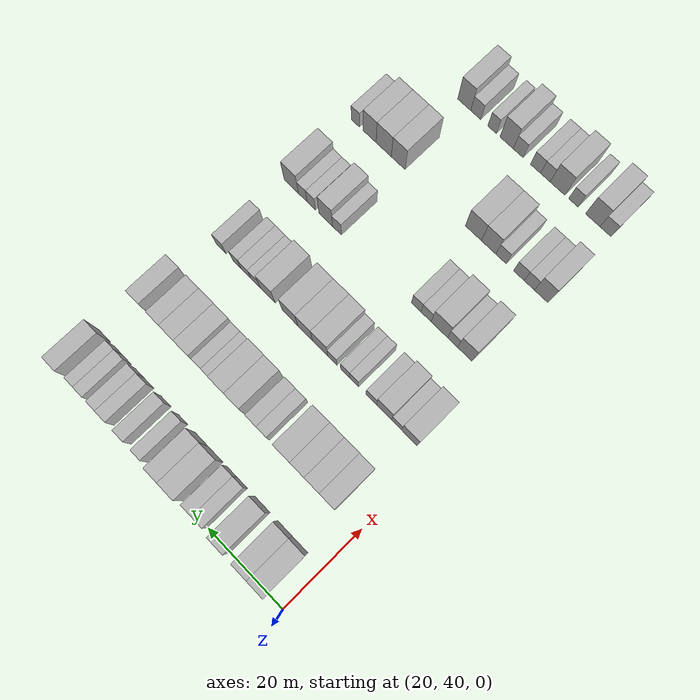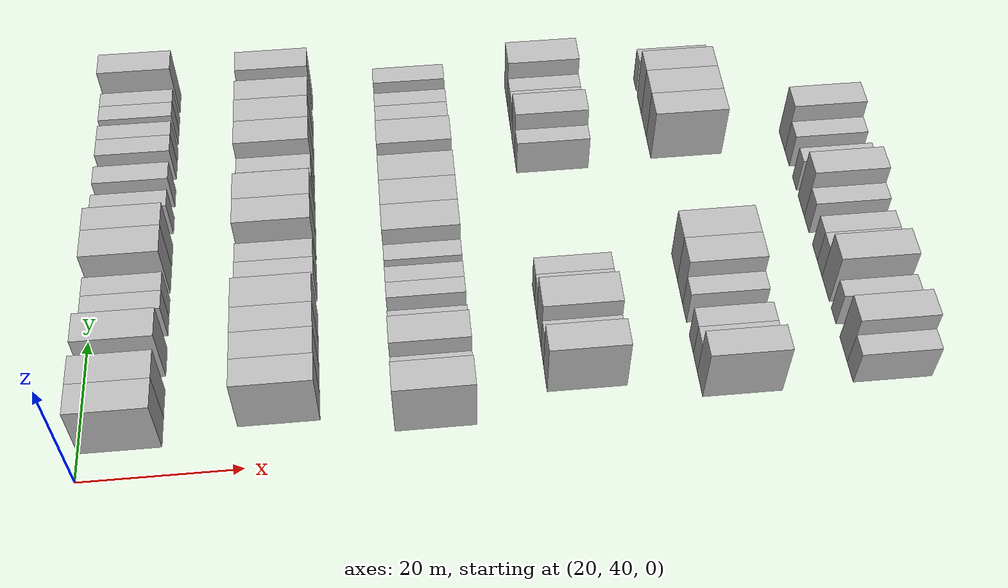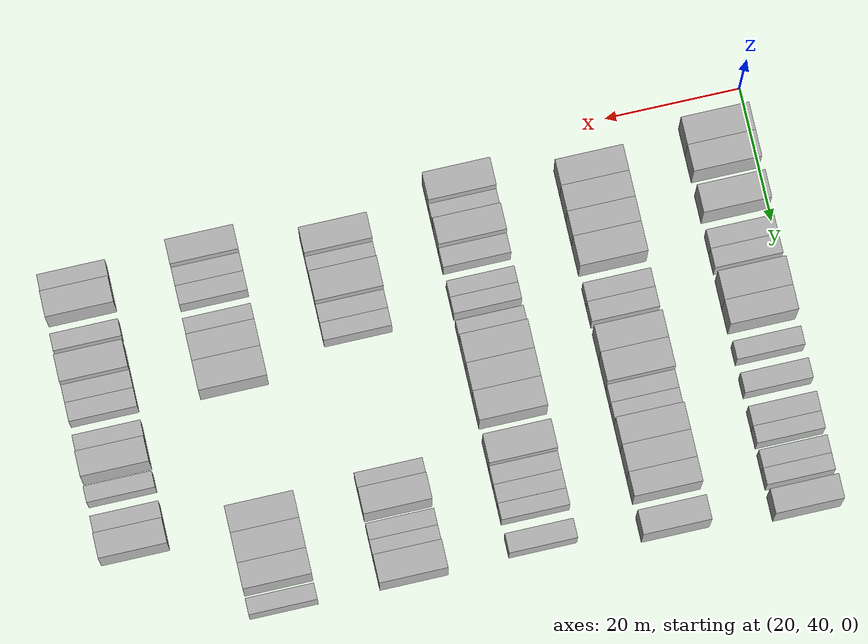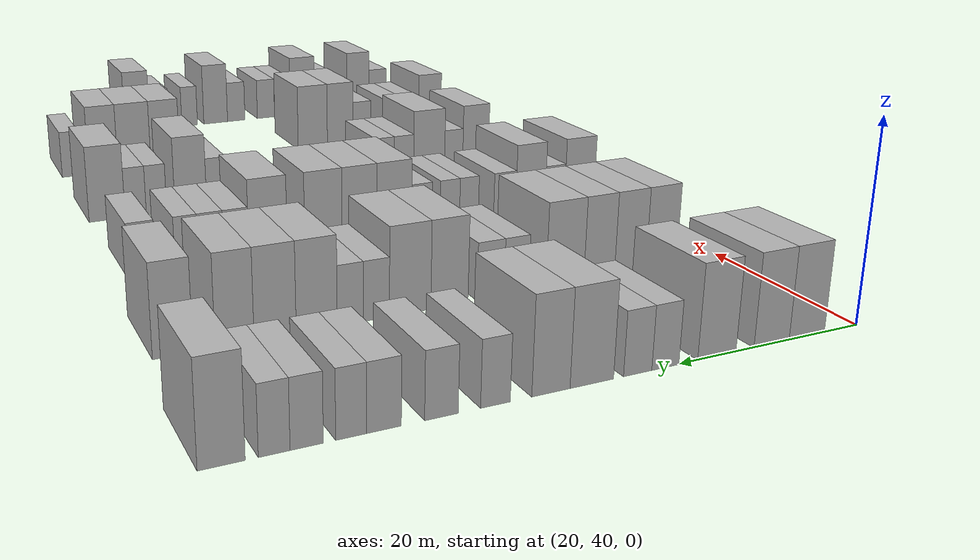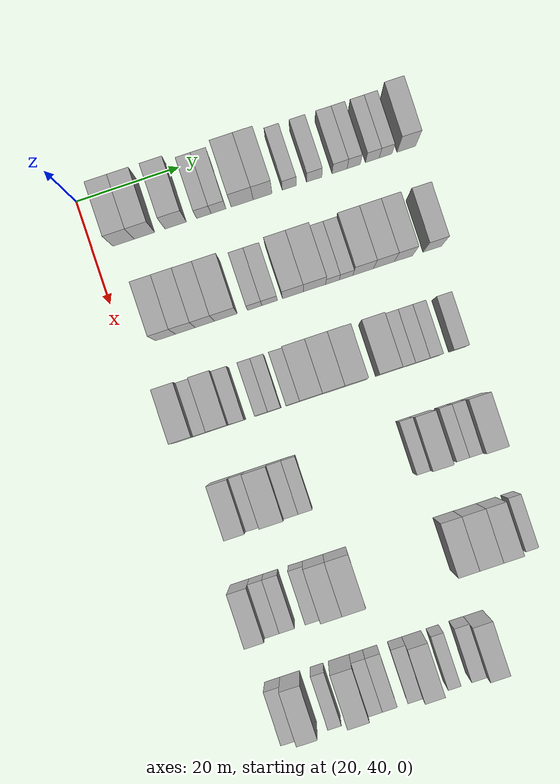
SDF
<sdf version="1.6">
 <world name="default">
  <model name="building_104">
   <static>1</static>
   <pose>25.0000 45.9357 0 0.000000 0.000000 0.000000</pose>
   <link name="link">
    <pose>0 0 4.50 0 0 0</pose>
    <collision name="collision"><geometry><box><size>10.0000 4.1173 9.0000</size></box></geometry></collision>
    <visual name="visual">
     <cast_shadows>0</cast_shadows>
     <geometry><box><size>10.0000 4.1173 9.0000</size></box></geometry>
     <material>
      <script>
       <uri>model://HANNAS_wall/materials/scripts</uri>
       <uri>model://HANNAS_wall/materials/textures</uri>
       <name>vrc/HANNAS_wall</name>
      </script>
     </material>
    </visual>
   </link>
  </model>
  <model name="building_105">
   <static>1</static>
   <pose>25.0000 49.9851 0 0.000000 0.000000 0.000000</pose>
   <link name="link">
    <pose>0 0 4.50 0 0 0</pose>
    <collision name="collision"><geometry><box><size>10.0000 3.9816 9.0000</size></box></geometry></collision>
    <visual name="visual">
     <cast_shadows>0</cast_shadows>
     <geometry><box><size>10.0000 3.9816 9.0000</size></box></geometry>
     <material>
      <script>
       <uri>model://HANNAS_wall/materials/scripts</uri>
       <uri>model://HANNAS_wall/materials/textures</uri>
       <name>vrc/HANNAS_wall</name>
      </script>
     </material>
    </visual>
   </link>
  </model>
  <model name="building_106">
   <static>1</static>
   <pose>25.0000 56.0483 0 0.000000 0.000000 0.000000</pose>
   <link name="link">
    <pose>0 0 4.50 0 0 0</pose>
    <collision name="collision"><geometry><box><size>10.0000 4.1447 9.0000</size></box></geometry></collision>
    <visual name="visual">
     <cast_shadows>0</cast_shadows>
     <geometry><box><size>10.0000 4.1447 9.0000</size></box></geometry>
     <material>
      <script>
       <uri>model://HANNAS_wall/materials/scripts</uri>
       <uri>model://HANNAS_wall/materials/textures</uri>
       <name>vrc/HANNAS_wall</name>
      </script>
     </material>
    </visual>
   </link>
  </model>
  <model name="building_107">
   <static>1</static>
   <pose>25.0000 61.5281 0 0.000000 0.000000 0.000000</pose>
   <link name="link">
    <pose>0 0 3.00 0 0 0</pose>
    <collision name="collision"><geometry><box><size>10.0000 2.8149 6.0000</size></box></geometry></collision>
    <visual name="visual">
     <cast_shadows>0</cast_shadows>
     <geometry><box><size>10.0000 2.8149 6.0000</size></box></geometry>
     <material>
      <script>
       <uri>model://HANNAS_wall/materials/scripts</uri>
       <uri>model://HANNAS_wall/materials/textures</uri>
       <name>vrc/HANNAS_wall</name>
      </script>
     </material>
    </visual>
   </link>
  </model>
  <model name="building_108">
   <static>1</static>
   <pose>25.0000 64.3723 0 0.000000 0.000000 0.000000</pose>
   <link name="link">
    <pose>0 0 3.00 0 0 0</pose>
    <collision name="collision"><geometry><box><size>10.0000 2.8735 6.0000</size></box></geometry></collision>
    <visual name="visual">
     <cast_shadows>0</cast_shadows>
     <geometry><box><size>10.0000 2.8735 6.0000</size></box></geometry>
     <material>
      <script>
       <uri>model://HANNAS_wall/materials/scripts</uri>
       <uri>model://HANNAS_wall/materials/textures</uri>
       <name>vrc/HANNAS_wall</name>
      </script>
     </material>
    </visual>
   </link>
  </model>
  <model name="building_109">
   <static>1</static>
   <pose>25.0000 68.9451 0 0.000000 0.000000 0.000000</pose>
   <link name="link">
    <pose>0 0 4.50 0 0 0</pose>
    <collision name="collision"><geometry><box><size>10.0000 4.2720 9.0000</size></box></geometry></collision>
    <visual name="visual">
     <cast_shadows>0</cast_shadows>
     <geometry><box><size>10.0000 4.2720 9.0000</size></box></geometry>
     <material>
      <script>
       <uri>model://HANNAS_wall/materials/scripts</uri>
       <uri>model://HANNAS_wall/materials/textures</uri>
       <name>vrc/HANNAS_wall</name>
      </script>
     </material>
    </visual>
   </link>
  </model>
  <model name="building_110">
   <static>1</static>
   <pose>25.0000 72.8999 0 0.000000 0.000000 0.000000</pose>
   <link name="link">
    <pose>0 0 4.50 0 0 0</pose>
    <collision name="collision"><geometry><box><size>10.0000 3.6376 9.0000</size></box></geometry></collision>
    <visual name="visual">
     <cast_shadows>0</cast_shadows>
     <geometry><box><size>10.0000 3.6376 9.0000</size></box></geometry>
     <material>
      <script>
       <uri>model://HANNAS_wall/materials/scripts</uri>
       <uri>model://HANNAS_wall/materials/textures</uri>
       <name>vrc/HANNAS_wall</name>
      </script>
     </material>
    </visual>
   </link>
  </model>
  <model name="building_111">
   <static>1</static>
   <pose>25.0000 78.0755 0 0.000000 0.000000 0.000000</pose>
   <link name="link">
    <pose>0 0 3.00 0 0 0</pose>
    <collision name="collision"><geometry><box><size>10.0000 2.7136 6.0000</size></box></geometry></collision>
    <visual name="visual">
     <cast_shadows>0</cast_shadows>
     <geometry><box><size>10.0000 2.7136 6.0000</size></box></geometry>
     <material>
      <script>
       <uri>model://HANNAS_wall/materials/scripts</uri>
       <uri>model://HANNAS_wall/materials/textures</uri>
       <name>vrc/HANNAS_wall</name>
      </script>
     </material>
    </visual>
   </link>
  </model>
  <model name="building_112">
   <static>1</static>
   <pose>25.0000 82.9040 0 0.000000 0.000000 0.000000</pose>
   <link name="link">
    <pose>0 0 3.00 0 0 0</pose>
    <collision name="collision"><geometry><box><size>10.0000 2.9436 6.0000</size></box></geometry></collision>
    <visual name="visual">
     <cast_shadows>0</cast_shadows>
     <geometry><box><size>10.0000 2.9436 6.0000</size></box></geometry>
     <material>
      <script>
       <uri>model://HANNAS_wall/materials/scripts</uri>
       <uri>model://HANNAS_wall/materials/textures</uri>
       <name>vrc/HANNAS_wall</name>
      </script>
     </material>
    </visual>
   </link>
  </model>
  <model name="building_113">
   <static>1</static>
   <pose>25.0000 87.8279 0 0.000000 0.000000 0.000000</pose>
   <link name="link">
    <pose>0 0 3.00 0 0 0</pose>
    <collision name="collision"><geometry><box><size>10.0000 2.9041 6.0000</size></box></geometry></collision>
    <visual name="visual">
     <cast_shadows>0</cast_shadows>
     <geometry><box><size>10.0000 2.9041 6.0000</size></box></geometry>
     <material>
      <script>
       <uri>model://HANNAS_wall/materials/scripts</uri>
       <uri>model://HANNAS_wall/materials/textures</uri>
       <name>vrc/HANNAS_wall</name>
      </script>
     </material>
    </visual>
   </link>
  </model>
  <model name="building_114">
   <static>1</static>
   <pose>25.0000 90.5558 0 0.000000 0.000000 0.000000</pose>
   <link name="link">
    <pose>0 0 3.00 0 0 0</pose>
    <collision name="collision"><geometry><box><size>10.0000 2.5516 6.0000</size></box></geometry></collision>
    <visual name="visual">
     <cast_shadows>0</cast_shadows>
     <geometry><box><size>10.0000 2.5516 6.0000</size></box></geometry>
     <material>
      <script>
       <uri>model://HANNAS_wall/materials/scripts</uri>
       <uri>model://HANNAS_wall/materials/textures</uri>
       <name>vrc/HANNAS_wall</name>
      </script>
     </material>
    </visual>
   </link>
  </model>
  <model name="building_115">
   <static>1</static>
   <pose>25.0000 94.1557 0 0.000000 0.000000 0.000000</pose>
   <link name="link">
    <pose>0 0 3.00 0 0 0</pose>
    <collision name="collision"><geometry><box><size>10.0000 2.6484 6.0000</size></box></geometry></collision>
    <visual name="visual">
     <cast_shadows>0</cast_shadows>
     <geometry><box><size>10.0000 2.6484 6.0000</size></box></geometry>
     <material>
      <script>
       <uri>model://HANNAS_wall/materials/scripts</uri>
       <uri>model://HANNAS_wall/materials/textures</uri>
       <name>vrc/HANNAS_wall</name>
      </script>
     </material>
    </visual>
   </link>
  </model>
  <model name="building_116">
   <static>1</static>
   <pose>25.0000 96.7173 0 0.000000 0.000000 0.000000</pose>
   <link name="link">
    <pose>0 0 3.00 0 0 0</pose>
    <collision name="collision"><geometry><box><size>10.0000 2.4748 6.0000</size></box></geometry></collision>
    <visual name="visual">
     <cast_shadows>0</cast_shadows>
     <geometry><box><size>10.0000 2.4748 6.0000</size></box></geometry>
     <material>
      <script>
       <uri>model://HANNAS_wall/materials/scripts</uri>
       <uri>model://HANNAS_wall/materials/textures</uri>
       <name>vrc/HANNAS_wall</name>
      </script>
     </material>
    </visual>
   </link>
  </model>
  <model name="building_117">
   <static>1</static>
   <pose>25.0000 100.7649 0 0.000000 0.000000 0.000000</pose>
   <link name="link">
    <pose>0 0 4.50 0 0 0</pose>
    <collision name="collision"><geometry><box><size>10.0000 3.6204 9.0000</size></box></geometry></collision>
    <visual name="visual">
     <cast_shadows>0</cast_shadows>
     <geometry><box><size>10.0000 3.6204 9.0000</size></box></geometry>
     <material>
      <script>
       <uri>model://HANNAS_wall/materials/scripts</uri>
       <uri>model://HANNAS_wall/materials/textures</uri>
       <name>vrc/HANNAS_wall</name>
      </script>
     </material>
    </visual>
   </link>
  </model>
  <model name="building_280">
   <static>1</static>
   <pose>44.0000 47.8045 0 0.000000 0.000000 0.000000</pose>
   <link name="link">
    <pose>0 0 4.50 0 0 0</pose>
    <collision name="collision"><geometry><box><size>10.0000 3.8726 9.0000</size></box></geometry></collision>
    <visual name="visual">
     <cast_shadows>0</cast_shadows>
     <geometry><box><size>10.0000 3.8726 9.0000</size></box></geometry>
     <material>
      <script>
       <uri>model://HANNAS_wall/materials/scripts</uri>
       <uri>model://HANNAS_wall/materials/textures</uri>
       <name>vrc/HANNAS_wall</name>
      </script>
     </material>
    </visual>
   </link>
  </model>
  <model name="building_281">
   <static>1</static>
   <pose>44.0000 51.6657 0 0.000000 0.000000 0.000000</pose>
   <link name="link">
    <pose>0 0 4.50 0 0 0</pose>
    <collision name="collision"><geometry><box><size>10.0000 3.8498 9.0000</size></box></geometry></collision>
    <visual name="visual">
     <cast_shadows>0</cast_shadows>
     <geometry><box><size>10.0000 3.8498 9.0000</size></box></geometry>
     <material>
      <script>
       <uri>model://HANNAS_wall/materials/scripts</uri>
       <uri>model://HANNAS_wall/materials/textures</uri>
       <name>vrc/HANNAS_wall</name>
      </script>
     </material>
    </visual>
   </link>
  </model>
  <model name="building_282">
   <static>1</static>
   <pose>44.0000 55.4360 0 0.000000 0.000000 0.000000</pose>
   <link name="link">
    <pose>0 0 4.50 0 0 0</pose>
    <collision name="collision"><geometry><box><size>10.0000 3.6908 9.0000</size></box></geometry></collision>
    <visual name="visual">
     <cast_shadows>0</cast_shadows>
     <geometry><box><size>10.0000 3.6908 9.0000</size></box></geometry>
     <material>
      <script>
       <uri>model://HANNAS_wall/materials/scripts</uri>
       <uri>model://HANNAS_wall/materials/textures</uri>
       <name>vrc/HANNAS_wall</name>
      </script>
     </material>
    </visual>
   </link>
  </model>
  <model name="building_283">
   <static>1</static>
   <pose>44.0000 59.5011 0 0.000000 0.000000 0.000000</pose>
   <link name="link">
    <pose>0 0 4.50 0 0 0</pose>
    <collision name="collision"><geometry><box><size>10.0000 4.4395 9.0000</size></box></geometry></collision>
    <visual name="visual">
     <cast_shadows>0</cast_shadows>
     <geometry><box><size>10.0000 4.4395 9.0000</size></box></geometry>
     <material>
      <script>
       <uri>model://HANNAS_wall/materials/scripts</uri>
       <uri>model://HANNAS_wall/materials/textures</uri>
       <name>vrc/HANNAS_wall</name>
      </script>
     </material>
    </visual>
   </link>
  </model>
  <model name="building_284">
   <static>1</static>
   <pose>44.0000 65.1068 0 0.000000 0.000000 0.000000</pose>
   <link name="link">
    <pose>0 0 3.00 0 0 0</pose>
    <collision name="collision"><geometry><box><size>10.0000 2.7719 6.0000</size></box></geometry></collision>
    <visual name="visual">
     <cast_shadows>0</cast_shadows>
     <geometry><box><size>10.0000 2.7719 6.0000</size></box></geometry>
     <material>
      <script>
       <uri>model://HANNAS_wall/materials/scripts</uri>
       <uri>model://HANNAS_wall/materials/textures</uri>
       <name>vrc/HANNAS_wall</name>
      </script>
     </material>
    </visual>
   </link>
  </model>
  <model name="building_285">
   <static>1</static>
   <pose>44.0000 67.9868 0 0.000000 0.000000 0.000000</pose>
   <link name="link">
    <pose>0 0 3.00 0 0 0</pose>
    <collision name="collision"><geometry><box><size>10.0000 2.9880 6.0000</size></box></geometry></collision>
    <visual name="visual">
     <cast_shadows>0</cast_shadows>
     <geometry><box><size>10.0000 2.9880 6.0000</size></box></geometry>
     <material>
      <script>
       <uri>model://HANNAS_wall/materials/scripts</uri>
       <uri>model://HANNAS_wall/materials/textures</uri>
       <name>vrc/HANNAS_wall</name>
      </script>
     </material>
    </visual>
   </link>
  </model>
  <model name="building_286">
   <static>1</static>
   <pose>44.0000 72.4764 0 0.000000 0.000000 0.000000</pose>
   <link name="link">
    <pose>0 0 4.50 0 0 0</pose>
    <collision name="collision"><geometry><box><size>10.0000 3.9912 9.0000</size></box></geometry></collision>
    <visual name="visual">
     <cast_shadows>0</cast_shadows>
     <geometry><box><size>10.0000 3.9912 9.0000</size></box></geometry>
     <material>
      <script>
       <uri>model://HANNAS_wall/materials/scripts</uri>
       <uri>model://HANNAS_wall/materials/textures</uri>
       <name>vrc/HANNAS_wall</name>
      </script>
     </material>
    </visual>
   </link>
  </model>
  <model name="building_287">
   <static>1</static>
   <pose>44.0000 76.6403 0 0.000000 0.000000 0.000000</pose>
   <link name="link">
    <pose>0 0 4.50 0 0 0</pose>
    <collision name="collision"><geometry><box><size>10.0000 4.3366 9.0000</size></box></geometry></collision>
    <visual name="visual">
     <cast_shadows>0</cast_shadows>
     <geometry><box><size>10.0000 4.3366 9.0000</size></box></geometry>
     <material>
      <script>
       <uri>model://HANNAS_wall/materials/scripts</uri>
       <uri>model://HANNAS_wall/materials/textures</uri>
       <name>vrc/HANNAS_wall</name>
      </script>
     </material>
    </visual>
   </link>
  </model>
  <model name="building_288">
   <static>1</static>
   <pose>44.0000 80.1387 0 0.000000 0.000000 0.000000</pose>
   <link name="link">
    <pose>0 0 3.00 0 0 0</pose>
    <collision name="collision"><geometry><box><size>10.0000 2.6603 6.0000</size></box></geometry></collision>
    <visual name="visual">
     <cast_shadows>0</cast_shadows>
     <geometry><box><size>10.0000 2.6603 6.0000</size></box></geometry>
     <material>
      <script>
       <uri>model://HANNAS_wall/materials/scripts</uri>
       <uri>model://HANNAS_wall/materials/textures</uri>
       <name>vrc/HANNAS_wall</name>
      </script>
     </material>
    </visual>
   </link>
  </model>
  <model name="building_289">
   <static>1</static>
   <pose>44.0000 82.7761 0 0.000000 0.000000 0.000000</pose>
   <link name="link">
    <pose>0 0 3.00 0 0 0</pose>
    <collision name="collision"><geometry><box><size>10.0000 2.6144 6.0000</size></box></geometry></collision>
    <visual name="visual">
     <cast_shadows>0</cast_shadows>
     <geometry><box><size>10.0000 2.6144 6.0000</size></box></geometry>
     <material>
      <script>
       <uri>model://HANNAS_wall/materials/scripts</uri>
       <uri>model://HANNAS_wall/materials/textures</uri>
       <name>vrc/HANNAS_wall</name>
      </script>
     </material>
    </visual>
   </link>
  </model>
  <model name="building_290">
   <static>1</static>
   <pose>44.0000 86.0922 0 0.000000 0.000000 0.000000</pose>
   <link name="link">
    <pose>0 0 4.50 0 0 0</pose>
    <collision name="collision"><geometry><box><size>10.0000 4.0179 9.0000</size></box></geometry></collision>
    <visual name="visual">
     <cast_shadows>0</cast_shadows>
     <geometry><box><size>10.0000 4.0179 9.0000</size></box></geometry>
     <material>
      <script>
       <uri>model://HANNAS_wall/materials/scripts</uri>
       <uri>model://HANNAS_wall/materials/textures</uri>
       <name>vrc/HANNAS_wall</name>
      </script>
     </material>
    </visual>
   </link>
  </model>
  <model name="building_291">
   <static>1</static>
   <pose>44.0000 90.1082 0 0.000000 0.000000 0.000000</pose>
   <link name="link">
    <pose>0 0 4.50 0 0 0</pose>
    <collision name="collision"><geometry><box><size>10.0000 4.0142 9.0000</size></box></geometry></collision>
    <visual name="visual">
     <cast_shadows>0</cast_shadows>
     <geometry><box><size>10.0000 4.0142 9.0000</size></box></geometry>
     <material>
      <script>
       <uri>model://HANNAS_wall/materials/scripts</uri>
       <uri>model://HANNAS_wall/materials/textures</uri>
       <name>vrc/HANNAS_wall</name>
      </script>
     </material>
    </visual>
   </link>
  </model>
  <model name="building_292">
   <static>1</static>
   <pose>44.0000 93.9191 0 0.000000 0.000000 0.000000</pose>
   <link name="link">
    <pose>0 0 4.50 0 0 0</pose>
    <collision name="collision"><geometry><box><size>10.0000 3.6077 9.0000</size></box></geometry></collision>
    <visual name="visual">
     <cast_shadows>0</cast_shadows>
     <geometry><box><size>10.0000 3.6077 9.0000</size></box></geometry>
     <material>
      <script>
       <uri>model://HANNAS_wall/materials/scripts</uri>
       <uri>model://HANNAS_wall/materials/textures</uri>
       <name>vrc/HANNAS_wall</name>
      </script>
     </material>
    </visual>
   </link>
  </model>
  <model name="building_293">
   <static>1</static>
   <pose>44.0000 99.5244 0 0.000000 0.000000 0.000000</pose>
   <link name="link">
    <pose>0 0 4.50 0 0 0</pose>
    <collision name="collision"><geometry><box><size>10.0000 3.6028 9.0000</size></box></geometry></collision>
    <visual name="visual">
     <cast_shadows>0</cast_shadows>
     <geometry><box><size>10.0000 3.6028 9.0000</size></box></geometry>
     <material>
      <script>
       <uri>model://HANNAS_wall/materials/scripts</uri>
       <uri>model://HANNAS_wall/materials/textures</uri>
       <name>vrc/HANNAS_wall</name>
      </script>
     </material>
    </visual>
   </link>
  </model>
  <model name="building_452">
   <static>1</static>
   <pose>63.0000 45.5175 0 0.000000 0.000000 0.000000</pose>
   <link name="link">
    <pose>0 0 4.50 0 0 0</pose>
    <collision name="collision"><geometry><box><size>10.0000 4.1214 9.0000</size></box></geometry></collision>
    <visual name="visual">
     <cast_shadows>0</cast_shadows>
     <geometry><box><size>10.0000 4.1214 9.0000</size></box></geometry>
     <material>
      <script>
       <uri>model://HANNAS_wall/materials/scripts</uri>
       <uri>model://HANNAS_wall/materials/textures</uri>
       <name>vrc/HANNAS_wall</name>
      </script>
     </material>
    </visual>
   </link>
  </model>
  <model name="building_453">
   <static>1</static>
   <pose>63.0000 48.9113 0 0.000000 0.000000 0.000000</pose>
   <link name="link">
    <pose>0 0 3.00 0 0 0</pose>
    <collision name="collision"><geometry><box><size>10.0000 2.6662 6.0000</size></box></geometry></collision>
    <visual name="visual">
     <cast_shadows>0</cast_shadows>
     <geometry><box><size>10.0000 2.6662 6.0000</size></box></geometry>
     <material>
      <script>
       <uri>model://HANNAS_wall/materials/scripts</uri>
       <uri>model://HANNAS_wall/materials/textures</uri>
       <name>vrc/HANNAS_wall</name>
      </script>
     </material>
    </visual>
   </link>
  </model>
  <model name="building_454">
   <static>1</static>
   <pose>63.0000 52.2151 0 0.000000 0.000000 0.000000</pose>
   <link name="link">
    <pose>0 0 4.50 0 0 0</pose>
    <collision name="collision"><geometry><box><size>10.0000 3.9414 9.0000</size></box></geometry></collision>
    <visual name="visual">
     <cast_shadows>0</cast_shadows>
     <geometry><box><size>10.0000 3.9414 9.0000</size></box></geometry>
     <material>
      <script>
       <uri>model://HANNAS_wall/materials/scripts</uri>
       <uri>model://HANNAS_wall/materials/textures</uri>
       <name>vrc/HANNAS_wall</name>
      </script>
     </material>
    </visual>
   </link>
  </model>
  <model name="building_455">
   <static>1</static>
   <pose>63.0000 55.6369 0 0.000000 0.000000 0.000000</pose>
   <link name="link">
    <pose>0 0 3.00 0 0 0</pose>
    <collision name="collision"><geometry><box><size>10.0000 2.9020 6.0000</size></box></geometry></collision>
    <visual name="visual">
     <cast_shadows>0</cast_shadows>
     <geometry><box><size>10.0000 2.9020 6.0000</size></box></geometry>
     <material>
      <script>
       <uri>model://HANNAS_wall/materials/scripts</uri>
       <uri>model://HANNAS_wall/materials/textures</uri>
       <name>vrc/HANNAS_wall</name>
      </script>
     </material>
    </visual>
   </link>
  </model>
  <model name="building_456">
   <static>1</static>
   <pose>63.0000 60.2966 0 0.000000 0.000000 0.000000</pose>
   <link name="link">
    <pose>0 0 3.00 0 0 0</pose>
    <collision name="collision"><geometry><box><size>10.0000 2.4174 6.0000</size></box></geometry></collision>
    <visual name="visual">
     <cast_shadows>0</cast_shadows>
     <geometry><box><size>10.0000 2.4174 6.0000</size></box></geometry>
     <material>
      <script>
       <uri>model://HANNAS_wall/materials/scripts</uri>
       <uri>model://HANNAS_wall/materials/textures</uri>
       <name>vrc/HANNAS_wall</name>
      </script>
     </material>
    </visual>
   </link>
  </model>
  <model name="building_457">
   <static>1</static>
   <pose>63.0000 62.7352 0 0.000000 0.000000 0.000000</pose>
   <link name="link">
    <pose>0 0 3.00 0 0 0</pose>
    <collision name="collision"><geometry><box><size>10.0000 2.4598 6.0000</size></box></geometry></collision>
    <visual name="visual">
     <cast_shadows>0</cast_shadows>
     <geometry><box><size>10.0000 2.4598 6.0000</size></box></geometry>
     <material>
      <script>
       <uri>model://HANNAS_wall/materials/scripts</uri>
       <uri>model://HANNAS_wall/materials/textures</uri>
       <name>vrc/HANNAS_wall</name>
      </script>
     </material>
    </visual>
   </link>
  </model>
  <model name="building_458">
   <static>1</static>
   <pose>63.0000 66.2362 0 0.000000 0.000000 0.000000</pose>
   <link name="link">
    <pose>0 0 3.00 0 0 0</pose>
    <collision name="collision"><geometry><box><size>10.0000 2.5423 6.0000</size></box></geometry></collision>
    <visual name="visual">
     <cast_shadows>0</cast_shadows>
     <geometry><box><size>10.0000 2.5423 6.0000</size></box></geometry>
     <material>
      <script>
       <uri>model://HANNAS_wall/materials/scripts</uri>
       <uri>model://HANNAS_wall/materials/textures</uri>
       <name>vrc/HANNAS_wall</name>
      </script>
     </material>
    </visual>
   </link>
  </model>
  <model name="building_459">
   <static>1</static>
   <pose>63.0000 69.6197 0 0.000000 0.000000 0.000000</pose>
   <link name="link">
    <pose>0 0 4.50 0 0 0</pose>
    <collision name="collision"><geometry><box><size>10.0000 4.2246 9.0000</size></box></geometry></collision>
    <visual name="visual">
     <cast_shadows>0</cast_shadows>
     <geometry><box><size>10.0000 4.2246 9.0000</size></box></geometry>
     <material>
      <script>
       <uri>model://HANNAS_wall/materials/scripts</uri>
       <uri>model://HANNAS_wall/materials/textures</uri>
       <name>vrc/HANNAS_wall</name>
      </script>
     </material>
    </visual>
   </link>
  </model>
  <model name="building_460">
   <static>1</static>
   <pose>63.0000 73.8079 0 0.000000 0.000000 0.000000</pose>
   <link name="link">
    <pose>0 0 4.50 0 0 0</pose>
    <collision name="collision"><geometry><box><size>10.0000 4.1519 9.0000</size></box></geometry></collision>
    <visual name="visual">
     <cast_shadows>0</cast_shadows>
     <geometry><box><size>10.0000 4.1519 9.0000</size></box></geometry>
     <material>
      <script>
       <uri>model://HANNAS_wall/materials/scripts</uri>
       <uri>model://HANNAS_wall/materials/textures</uri>
       <name>vrc/HANNAS_wall</name>
      </script>
     </material>
    </visual>
   </link>
  </model>
  <model name="building_461">
   <static>1</static>
   <pose>63.0000 78.0519 0 0.000000 0.000000 0.000000</pose>
   <link name="link">
    <pose>0 0 4.50 0 0 0</pose>
    <collision name="collision"><geometry><box><size>10.0000 4.3361 9.0000</size></box></geometry></collision>
    <visual name="visual">
     <cast_shadows>0</cast_shadows>
     <geometry><box><size>10.0000 4.3361 9.0000</size></box></geometry>
     <material>
      <script>
       <uri>model://HANNAS_wall/materials/scripts</uri>
       <uri>model://HANNAS_wall/materials/textures</uri>
       <name>vrc/HANNAS_wall</name>
      </script>
     </material>
    </visual>
   </link>
  </model>
  <model name="building_462">
   <static>1</static>
   <pose>63.0000 84.3587 0 0.000000 0.000000 0.000000</pose>
   <link name="link">
    <pose>0 0 4.50 0 0 0</pose>
    <collision name="collision"><geometry><box><size>10.0000 4.2775 9.0000</size></box></geometry></collision>
    <visual name="visual">
     <cast_shadows>0</cast_shadows>
     <geometry><box><size>10.0000 4.2775 9.0000</size></box></geometry>
     <material>
      <script>
       <uri>model://HANNAS_wall/materials/scripts</uri>
       <uri>model://HANNAS_wall/materials/textures</uri>
       <name>vrc/HANNAS_wall</name>
      </script>
     </material>
    </visual>
   </link>
  </model>
  <model name="building_463">
   <static>1</static>
   <pose>63.0000 87.8689 0 0.000000 0.000000 0.000000</pose>
   <link name="link">
    <pose>0 0 3.00 0 0 0</pose>
    <collision name="collision"><geometry><box><size>10.0000 2.7430 6.0000</size></box></geometry></collision>
    <visual name="visual">
     <cast_shadows>0</cast_shadows>
     <geometry><box><size>10.0000 2.7430 6.0000</size></box></geometry>
     <material>
      <script>
       <uri>model://HANNAS_wall/materials/scripts</uri>
       <uri>model://HANNAS_wall/materials/textures</uri>
       <name>vrc/HANNAS_wall</name>
      </script>
     </material>
    </visual>
   </link>
  </model>
  <model name="building_464">
   <static>1</static>
   <pose>63.0000 90.6099 0 0.000000 0.000000 0.000000</pose>
   <link name="link">
    <pose>0 0 3.00 0 0 0</pose>
    <collision name="collision"><geometry><box><size>10.0000 2.7390 6.0000</size></box></geometry></collision>
    <visual name="visual">
     <cast_shadows>0</cast_shadows>
     <geometry><box><size>10.0000 2.7390 6.0000</size></box></geometry>
     <material>
      <script>
       <uri>model://HANNAS_wall/materials/scripts</uri>
       <uri>model://HANNAS_wall/materials/textures</uri>
       <name>vrc/HANNAS_wall</name>
      </script>
     </material>
    </visual>
   </link>
  </model>
  <model name="building_465">
   <static>1</static>
   <pose>63.0000 93.2080 0 0.000000 0.000000 0.000000</pose>
   <link name="link">
    <pose>0 0 3.00 0 0 0</pose>
    <collision name="collision"><geometry><box><size>10.0000 2.4570 6.0000</size></box></geometry></collision>
    <visual name="visual">
     <cast_shadows>0</cast_shadows>
     <geometry><box><size>10.0000 2.4570 6.0000</size></box></geometry>
     <material>
      <script>
       <uri>model://HANNAS_wall/materials/scripts</uri>
       <uri>model://HANNAS_wall/materials/textures</uri>
       <name>vrc/HANNAS_wall</name>
      </script>
     </material>
    </visual>
   </link>
  </model>
  <model name="building_466">
   <static>1</static>
   <pose>63.0000 97.8701 0 0.000000 0.000000 0.000000</pose>
   <link name="link">
    <pose>0 0 3.00 0 0 0</pose>
    <collision name="collision"><geometry><box><size>10.0000 2.8673 6.0000</size></box></geometry></collision>
    <visual name="visual">
     <cast_shadows>0</cast_shadows>
     <geometry><box><size>10.0000 2.8673 6.0000</size></box></geometry>
     <material>
      <script>
       <uri>model://HANNAS_wall/materials/scripts</uri>
       <uri>model://HANNAS_wall/materials/textures</uri>
       <name>vrc/HANNAS_wall</name>
      </script>
     </material>
    </visual>
   </link>
  </model>
  <model name="building_609">
   <static>1</static>
   <pose>82.0000 49.2187 0 0.000000 0.000000 0.000000</pose>
   <link name="link">
    <pose>0 0 4.50 0 0 0</pose>
    <collision name="collision"><geometry><box><size>10.0000 3.8235 9.0000</size></box></geometry></collision>
    <visual name="visual">
     <cast_shadows>0</cast_shadows>
     <geometry><box><size>10.0000 3.8235 9.0000</size></box></geometry>
     <material>
      <script>
       <uri>model://HANNAS_wall/materials/scripts</uri>
       <uri>model://HANNAS_wall/materials/textures</uri>
       <name>vrc/HANNAS_wall</name>
      </script>
     </material>
    </visual>
   </link>
  </model>
  <model name="building_610">
   <static>1</static>
   <pose>82.0000 52.4566 0 0.000000 0.000000 0.000000</pose>
   <link name="link">
    <pose>0 0 3.00 0 0 0</pose>
    <collision name="collision"><geometry><box><size>10.0000 2.6524 6.0000</size></box></geometry></collision>
    <visual name="visual">
     <cast_shadows>0</cast_shadows>
     <geometry><box><size>10.0000 2.6524 6.0000</size></box></geometry>
     <material>
      <script>
       <uri>model://HANNAS_wall/materials/scripts</uri>
       <uri>model://HANNAS_wall/materials/textures</uri>
       <name>vrc/HANNAS_wall</name>
      </script>
     </material>
    </visual>
   </link>
  </model>
  <model name="building_611">
   <static>1</static>
   <pose>82.0000 56.0113 0 0.000000 0.000000 0.000000</pose>
   <link name="link">
    <pose>0 0 4.50 0 0 0</pose>
    <collision name="collision"><geometry><box><size>10.0000 4.4569 9.0000</size></box></geometry></collision>
    <visual name="visual">
     <cast_shadows>0</cast_shadows>
     <geometry><box><size>10.0000 4.4569 9.0000</size></box></geometry>
     <material>
      <script>
       <uri>model://HANNAS_wall/materials/scripts</uri>
       <uri>model://HANNAS_wall/materials/textures</uri>
       <name>vrc/HANNAS_wall</name>
      </script>
     </material>
    </visual>
   </link>
  </model>
  <model name="building_612">
   <static>1</static>
   <pose>82.0000 59.6047 0 0.000000 0.000000 0.000000</pose>
   <link name="link">
    <pose>0 0 3.00 0 0 0</pose>
    <collision name="collision"><geometry><box><size>10.0000 2.7300 6.0000</size></box></geometry></collision>
    <visual name="visual">
     <cast_shadows>0</cast_shadows>
     <geometry><box><size>10.0000 2.7300 6.0000</size></box></geometry>
     <material>
      <script>
       <uri>model://HANNAS_wall/materials/scripts</uri>
       <uri>model://HANNAS_wall/materials/textures</uri>
       <name>vrc/HANNAS_wall</name>
      </script>
     </material>
    </visual>
   </link>
  </model>
  <model name="building_613">
   <static>1</static>
   <pose>82.0000 62.2884 0 0.000000 0.000000 0.000000</pose>
   <link name="link">
    <pose>0 0 3.00 0 0 0</pose>
    <collision name="collision"><geometry><box><size>10.0000 2.6375 6.0000</size></box></geometry></collision>
    <visual name="visual">
     <cast_shadows>0</cast_shadows>
     <geometry><box><size>10.0000 2.6375 6.0000</size></box></geometry>
     <material>
      <script>
       <uri>model://HANNAS_wall/materials/scripts</uri>
       <uri>model://HANNAS_wall/materials/textures</uri>
       <name>vrc/HANNAS_wall</name>
      </script>
     </material>
    </visual>
   </link>
  </model>
  <model name="building_614">
   <static>1</static>
   <pose>82.0000 84.4507 0 0.000000 0.000000 0.000000</pose>
   <link name="link">
    <pose>0 0 3.00 0 0 0</pose>
    <collision name="collision"><geometry><box><size>10.0000 2.5623 6.0000</size></box></geometry></collision>
    <visual name="visual">
     <cast_shadows>0</cast_shadows>
     <geometry><box><size>10.0000 2.5623 6.0000</size></box></geometry>
     <material>
      <script>
       <uri>model://HANNAS_wall/materials/scripts</uri>
       <uri>model://HANNAS_wall/materials/textures</uri>
       <name>vrc/HANNAS_wall</name>
      </script>
     </material>
    </visual>
   </link>
  </model>
  <model name="building_615">
   <static>1</static>
   <pose>82.0000 87.6709 0 0.000000 0.000000 0.000000</pose>
   <link name="link">
    <pose>0 0 4.50 0 0 0</pose>
    <collision name="collision"><geometry><box><size>10.0000 3.8782 9.0000</size></box></geometry></collision>
    <visual name="visual">
     <cast_shadows>0</cast_shadows>
     <geometry><box><size>10.0000 3.8782 9.0000</size></box></geometry>
     <material>
      <script>
       <uri>model://HANNAS_wall/materials/scripts</uri>
       <uri>model://HANNAS_wall/materials/textures</uri>
       <name>vrc/HANNAS_wall</name>
      </script>
     </material>
    </visual>
   </link>
  </model>
  <model name="building_616">
   <static>1</static>
   <pose>82.0000 91.8308 0 0.000000 0.000000 0.000000</pose>
   <link name="link">
    <pose>0 0 3.00 0 0 0</pose>
    <collision name="collision"><geometry><box><size>10.0000 2.4417 6.0000</size></box></geometry></collision>
    <visual name="visual">
     <cast_shadows>0</cast_shadows>
     <geometry><box><size>10.0000 2.4417 6.0000</size></box></geometry>
     <material>
      <script>
       <uri>model://HANNAS_wall/materials/scripts</uri>
       <uri>model://HANNAS_wall/materials/textures</uri>
       <name>vrc/HANNAS_wall</name>
      </script>
     </material>
    </visual>
   </link>
  </model>
  <model name="building_617">
   <static>1</static>
   <pose>82.0000 94.2997 0 0.000000 0.000000 0.000000</pose>
   <link name="link">
    <pose>0 0 3.00 0 0 0</pose>
    <collision name="collision"><geometry><box><size>10.0000 2.4960 6.0000</size></box></geometry></collision>
    <visual name="visual">
     <cast_shadows>0</cast_shadows>
     <geometry><box><size>10.0000 2.4960 6.0000</size></box></geometry>
     <material>
      <script>
       <uri>model://HANNAS_wall/materials/scripts</uri>
       <uri>model://HANNAS_wall/materials/textures</uri>
       <name>vrc/HANNAS_wall</name>
      </script>
     </material>
    </visual>
   </link>
  </model>
  <model name="building_618">
   <static>1</static>
   <pose>82.0000 97.6360 0 0.000000 0.000000 0.000000</pose>
   <link name="link">
    <pose>0 0 4.50 0 0 0</pose>
    <collision name="collision"><geometry><box><size>10.0000 4.1766 9.0000</size></box></geometry></collision>
    <visual name="visual">
     <cast_shadows>0</cast_shadows>
     <geometry><box><size>10.0000 4.1766 9.0000</size></box></geometry>
     <material>
      <script>
       <uri>model://HANNAS_wall/materials/scripts</uri>
       <uri>model://HANNAS_wall/materials/textures</uri>
       <name>vrc/HANNAS_wall</name>
      </script>
     </material>
    </visual>
   </link>
  </model>
  <model name="building_784">
   <static>1</static>
   <pose>101.0000 46.5984 0 0.000000 0.000000 0.000000</pose>
   <link name="link">
    <pose>0 0 4.50 0 0 0</pose>
    <collision name="collision"><geometry><box><size>10.0000 3.6203 9.0000</size></box></geometry></collision>
    <visual name="visual">
     <cast_shadows>0</cast_shadows>
     <geometry><box><size>10.0000 3.6203 9.0000</size></box></geometry>
     <material>
      <script>
       <uri>model://HANNAS_wall/materials/scripts</uri>
       <uri>model://HANNAS_wall/materials/textures</uri>
       <name>vrc/HANNAS_wall</name>
      </script>
     </material>
    </visual>
   </link>
  </model>
  <model name="building_785">
   <static>1</static>
   <pose>101.0000 49.7686 0 0.000000 0.000000 0.000000</pose>
   <link name="link">
    <pose>0 0 3.00 0 0 0</pose>
    <collision name="collision"><geometry><box><size>10.0000 2.7201 6.0000</size></box></geometry></collision>
    <visual name="visual">
     <cast_shadows>0</cast_shadows>
     <geometry><box><size>10.0000 2.7201 6.0000</size></box></geometry>
     <material>
      <script>
       <uri>model://HANNAS_wall/materials/scripts</uri>
       <uri>model://HANNAS_wall/materials/textures</uri>
       <name>vrc/HANNAS_wall</name>
      </script>
     </material>
    </visual>
   </link>
  </model>
  <model name="building_786">
   <static>1</static>
   <pose>101.0000 52.5584 0 0.000000 0.000000 0.000000</pose>
   <link name="link">
    <pose>0 0 3.00 0 0 0</pose>
    <collision name="collision"><geometry><box><size>10.0000 2.8596 6.0000</size></box></geometry></collision>
    <visual name="visual">
     <cast_shadows>0</cast_shadows>
     <geometry><box><size>10.0000 2.8596 6.0000</size></box></geometry>
     <material>
      <script>
       <uri>model://HANNAS_wall/materials/scripts</uri>
       <uri>model://HANNAS_wall/materials/textures</uri>
       <name>vrc/HANNAS_wall</name>
      </script>
     </material>
    </visual>
   </link>
  </model>
  <model name="building_787">
   <static>1</static>
   <pose>101.0000 57.3860 0 0.000000 0.000000 0.000000</pose>
   <link name="link">
    <pose>0 0 3.00 0 0 0</pose>
    <collision name="collision"><geometry><box><size>10.0000 2.7956 6.0000</size></box></geometry></collision>
    <visual name="visual">
     <cast_shadows>0</cast_shadows>
     <geometry><box><size>10.0000 2.7956 6.0000</size></box></geometry>
     <material>
      <script>
       <uri>model://HANNAS_wall/materials/scripts</uri>
       <uri>model://HANNAS_wall/materials/textures</uri>
       <name>vrc/HANNAS_wall</name>
      </script>
     </material>
    </visual>
   </link>
  </model>
  <model name="building_788">
   <static>1</static>
   <pose>101.0000 60.7581 0 0.000000 0.000000 0.000000</pose>
   <link name="link">
    <pose>0 0 4.50 0 0 0</pose>
    <collision name="collision"><geometry><box><size>10.0000 3.9487 9.0000</size></box></geometry></collision>
    <visual name="visual">
     <cast_shadows>0</cast_shadows>
     <geometry><box><size>10.0000 3.9487 9.0000</size></box></geometry>
     <material>
      <script>
       <uri>model://HANNAS_wall/materials/scripts</uri>
       <uri>model://HANNAS_wall/materials/textures</uri>
       <name>vrc/HANNAS_wall</name>
      </script>
     </material>
    </visual>
   </link>
  </model>
  <model name="building_789">
   <static>1</static>
   <pose>101.0000 64.9285 0 0.000000 0.000000 0.000000</pose>
   <link name="link">
    <pose>0 0 4.50 0 0 0</pose>
    <collision name="collision"><geometry><box><size>10.0000 4.3920 9.0000</size></box></geometry></collision>
    <visual name="visual">
     <cast_shadows>0</cast_shadows>
     <geometry><box><size>10.0000 4.3920 9.0000</size></box></geometry>
     <material>
      <script>
       <uri>model://HANNAS_wall/materials/scripts</uri>
       <uri>model://HANNAS_wall/materials/textures</uri>
       <name>vrc/HANNAS_wall</name>
      </script>
     </material>
    </visual>
   </link>
  </model>
  <model name="building_790">
   <static>1</static>
   <pose>101.0000 86.0426 0 0.000000 0.000000 0.000000</pose>
   <link name="link">
    <pose>0 0 4.50 0 0 0</pose>
    <collision name="collision"><geometry><box><size>10.0000 3.9454 9.0000</size></box></geometry></collision>
    <visual name="visual">
     <cast_shadows>0</cast_shadows>
     <geometry><box><size>10.0000 3.9454 9.0000</size></box></geometry>
     <material>
      <script>
       <uri>model://HANNAS_wall/materials/scripts</uri>
       <uri>model://HANNAS_wall/materials/textures</uri>
       <name>vrc/HANNAS_wall</name>
      </script>
     </material>
    </visual>
   </link>
  </model>
  <model name="building_791">
   <static>1</static>
   <pose>101.0000 90.2201 0 0.000000 0.000000 0.000000</pose>
   <link name="link">
    <pose>0 0 4.50 0 0 0</pose>
    <collision name="collision"><geometry><box><size>10.0000 4.4097 9.0000</size></box></geometry></collision>
    <visual name="visual">
     <cast_shadows>0</cast_shadows>
     <geometry><box><size>10.0000 4.4097 9.0000</size></box></geometry>
     <material>
      <script>
       <uri>model://HANNAS_wall/materials/scripts</uri>
       <uri>model://HANNAS_wall/materials/textures</uri>
       <name>vrc/HANNAS_wall</name>
      </script>
     </material>
    </visual>
   </link>
  </model>
  <model name="building_792">
   <static>1</static>
   <pose>101.0000 94.3314 0 0.000000 0.000000 0.000000</pose>
   <link name="link">
    <pose>0 0 4.50 0 0 0</pose>
    <collision name="collision"><geometry><box><size>10.0000 3.8128 9.0000</size></box></geometry></collision>
    <visual name="visual">
     <cast_shadows>0</cast_shadows>
     <geometry><box><size>10.0000 3.8128 9.0000</size></box></geometry>
     <material>
      <script>
       <uri>model://HANNAS_wall/materials/scripts</uri>
       <uri>model://HANNAS_wall/materials/textures</uri>
       <name>vrc/HANNAS_wall</name>
      </script>
     </material>
    </visual>
   </link>
  </model>
  <model name="building_793">
   <static>1</static>
   <pose>101.0000 98.4485 0 0.000000 0.000000 0.000000</pose>
   <link name="link">
    <pose>0 0 3.00 0 0 0</pose>
    <collision name="collision"><geometry><box><size>10.0000 2.4216 6.0000</size></box></geometry></collision>
    <visual name="visual">
     <cast_shadows>0</cast_shadows>
     <geometry><box><size>10.0000 2.4216 6.0000</size></box></geometry>
     <material>
      <script>
       <uri>model://HANNAS_wall/materials/scripts</uri>
       <uri>model://HANNAS_wall/materials/textures</uri>
       <name>vrc/HANNAS_wall</name>
      </script>
     </material>
    </visual>
   </link>
  </model>
  <model name="building_958">
   <static>1</static>
   <pose>120.0000 46.5967 0 0.000000 0.000000 0.000000</pose>
   <link name="link">
    <pose>0 0 3.00 0 0 0</pose>
    <collision name="collision"><geometry><box><size>10.0000 2.9504 6.0000</size></box></geometry></collision>
    <visual name="visual">
     <cast_shadows>0</cast_shadows>
     <geometry><box><size>10.0000 2.9504 6.0000</size></box></geometry>
     <material>
      <script>
       <uri>model://HANNAS_wall/materials/scripts</uri>
       <uri>model://HANNAS_wall/materials/textures</uri>
       <name>vrc/HANNAS_wall</name>
      </script>
     </material>
    </visual>
   </link>
  </model>
  <model name="building_959">
   <static>1</static>
   <pose>120.0000 49.9988 0 0.000000 0.000000 0.000000</pose>
   <link name="link">
    <pose>0 0 4.50 0 0 0</pose>
    <collision name="collision"><geometry><box><size>10.0000 3.8538 9.0000</size></box></geometry></collision>
    <visual name="visual">
     <cast_shadows>0</cast_shadows>
     <geometry><box><size>10.0000 3.8538 9.0000</size></box></geometry>
     <material>
      <script>
       <uri>model://HANNAS_wall/materials/scripts</uri>
       <uri>model://HANNAS_wall/materials/textures</uri>
       <name>vrc/HANNAS_wall</name>
      </script>
     </material>
    </visual>
   </link>
  </model>
  <model name="building_960">
   <static>1</static>
   <pose>120.0000 55.1968 0 0.000000 0.000000 0.000000</pose>
   <link name="link">
    <pose>0 0 3.00 0 0 0</pose>
    <collision name="collision"><geometry><box><size>10.0000 2.5424 6.0000</size></box></geometry></collision>
    <visual name="visual">
     <cast_shadows>0</cast_shadows>
     <geometry><box><size>10.0000 2.5424 6.0000</size></box></geometry>
     <material>
      <script>
       <uri>model://HANNAS_wall/materials/scripts</uri>
       <uri>model://HANNAS_wall/materials/textures</uri>
       <name>vrc/HANNAS_wall</name>
      </script>
     </material>
    </visual>
   </link>
  </model>
  <model name="building_961">
   <static>1</static>
   <pose>120.0000 59.4849 0 0.000000 0.000000 0.000000</pose>
   <link name="link">
    <pose>0 0 4.50 0 0 0</pose>
    <collision name="collision"><geometry><box><size>10.0000 4.0338 9.0000</size></box></geometry></collision>
    <visual name="visual">
     <cast_shadows>0</cast_shadows>
     <geometry><box><size>10.0000 4.0338 9.0000</size></box></geometry>
     <material>
      <script>
       <uri>model://HANNAS_wall/materials/scripts</uri>
       <uri>model://HANNAS_wall/materials/textures</uri>
       <name>vrc/HANNAS_wall</name>
      </script>
     </material>
    </visual>
   </link>
  </model>
  <model name="building_962">
   <static>1</static>
   <pose>120.0000 62.8167 0 0.000000 0.000000 0.000000</pose>
   <link name="link">
    <pose>0 0 3.00 0 0 0</pose>
    <collision name="collision"><geometry><box><size>10.0000 2.6298 6.0000</size></box></geometry></collision>
    <visual name="visual">
     <cast_shadows>0</cast_shadows>
     <geometry><box><size>10.0000 2.6298 6.0000</size></box></geometry>
     <material>
      <script>
       <uri>model://HANNAS_wall/materials/scripts</uri>
       <uri>model://HANNAS_wall/materials/textures</uri>
       <name>vrc/HANNAS_wall</name>
      </script>
     </material>
    </visual>
   </link>
  </model>
  <model name="building_963">
   <static>1</static>
   <pose>120.0000 65.5273 0 0.000000 0.000000 0.000000</pose>
   <link name="link">
    <pose>0 0 3.00 0 0 0</pose>
    <collision name="collision"><geometry><box><size>10.0000 2.7913 6.0000</size></box></geometry></collision>
    <visual name="visual">
     <cast_shadows>0</cast_shadows>
     <geometry><box><size>10.0000 2.7913 6.0000</size></box></geometry>
     <material>
      <script>
       <uri>model://HANNAS_wall/materials/scripts</uri>
       <uri>model://HANNAS_wall/materials/textures</uri>
       <name>vrc/HANNAS_wall</name>
      </script>
     </material>
    </visual>
   </link>
  </model>
  <model name="building_964">
   <static>1</static>
   <pose>120.0000 70.3139 0 0.000000 0.000000 0.000000</pose>
   <link name="link">
    <pose>0 0 3.00 0 0 0</pose>
    <collision name="collision"><geometry><box><size>10.0000 2.7820 6.0000</size></box></geometry></collision>
    <visual name="visual">
     <cast_shadows>0</cast_shadows>
     <geometry><box><size>10.0000 2.7820 6.0000</size></box></geometry>
     <material>
      <script>
       <uri>model://HANNAS_wall/materials/scripts</uri>
       <uri>model://HANNAS_wall/materials/textures</uri>
       <name>vrc/HANNAS_wall</name>
      </script>
     </material>
    </visual>
   </link>
  </model>
  <model name="building_965">
   <static>1</static>
   <pose>120.0000 73.5702 0 0.000000 0.000000 0.000000</pose>
   <link name="link">
    <pose>0 0 4.50 0 0 0</pose>
    <collision name="collision"><geometry><box><size>10.0000 3.7305 9.0000</size></box></geometry></collision>
    <visual name="visual">
     <cast_shadows>0</cast_shadows>
     <geometry><box><size>10.0000 3.7305 9.0000</size></box></geometry>
     <material>
      <script>
       <uri>model://HANNAS_wall/materials/scripts</uri>
       <uri>model://HANNAS_wall/materials/textures</uri>
       <name>vrc/HANNAS_wall</name>
      </script>
     </material>
    </visual>
   </link>
  </model>
  <model name="building_966">
   <static>1</static>
   <pose>120.0000 77.6410 0 0.000000 0.000000 0.000000</pose>
   <link name="link">
    <pose>0 0 3.00 0 0 0</pose>
    <collision name="collision"><geometry><box><size>10.0000 2.4113 6.0000</size></box></geometry></collision>
    <visual name="visual">
     <cast_shadows>0</cast_shadows>
     <geometry><box><size>10.0000 2.4113 6.0000</size></box></geometry>
     <material>
      <script>
       <uri>model://HANNAS_wall/materials/scripts</uri>
       <uri>model://HANNAS_wall/materials/textures</uri>
       <name>vrc/HANNAS_wall</name>
      </script>
     </material>
    </visual>
   </link>
  </model>
  <model name="building_967">
   <static>1</static>
   <pose>120.0000 82.2722 0 0.000000 0.000000 0.000000</pose>
   <link name="link">
    <pose>0 0 3.00 0 0 0</pose>
    <collision name="collision"><geometry><box><size>10.0000 2.8511 6.0000</size></box></geometry></collision>
    <visual name="visual">
     <cast_shadows>0</cast_shadows>
     <geometry><box><size>10.0000 2.8511 6.0000</size></box></geometry>
     <material>
      <script>
       <uri>model://HANNAS_wall/materials/scripts</uri>
       <uri>model://HANNAS_wall/materials/textures</uri>
       <name>vrc/HANNAS_wall</name>
      </script>
     </material>
    </visual>
   </link>
  </model>
  <model name="building_968">
   <static>1</static>
   <pose>120.0000 85.5579 0 0.000000 0.000000 0.000000</pose>
   <link name="link">
    <pose>0 0 4.50 0 0 0</pose>
    <collision name="collision"><geometry><box><size>10.0000 3.7202 9.0000</size></box></geometry></collision>
    <visual name="visual">
     <cast_shadows>0</cast_shadows>
     <geometry><box><size>10.0000 3.7202 9.0000</size></box></geometry>
     <material>
      <script>
       <uri>model://HANNAS_wall/materials/scripts</uri>
       <uri>model://HANNAS_wall/materials/textures</uri>
       <name>vrc/HANNAS_wall</name>
      </script>
     </material>
    </visual>
   </link>
  </model>
 </world>
</sdf>
